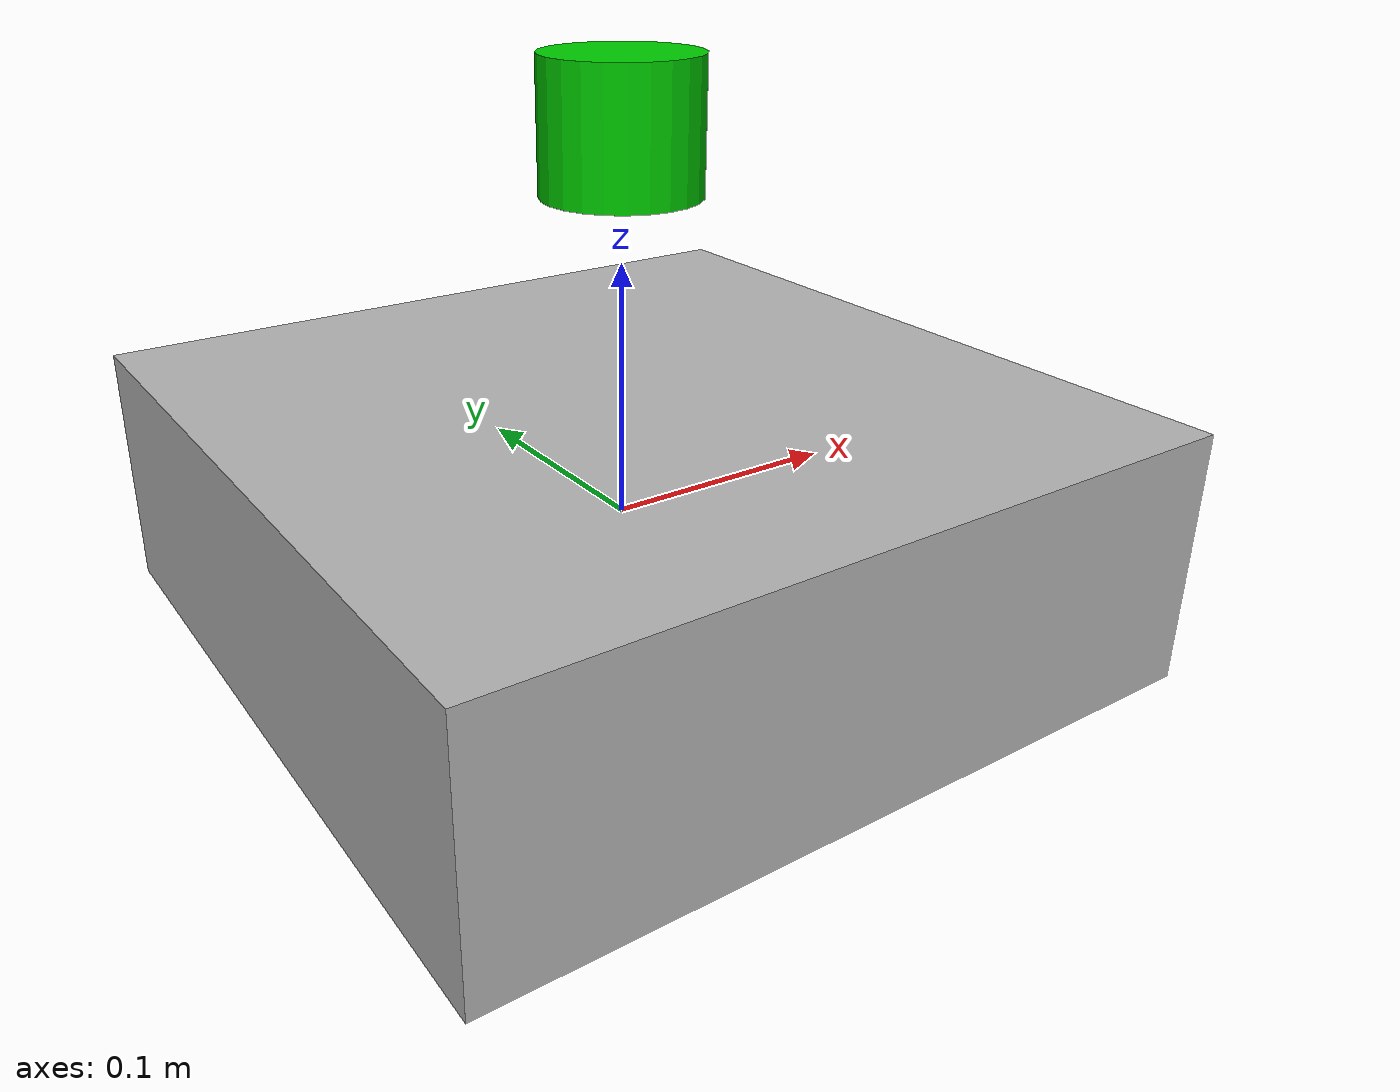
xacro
<?xml version="1.0"?>
<robot xmlns:xacro="http://ros.org/wiki/xacro" name="lidar_robot">
  <!-- Robot Base -->
  <link name="base_link">
    <visual>
      <geometry>
        <box size="0.3 0.3 0.1"/>
      </geometry>
      <material name="mat_1">
        <color rgba="0.7 0.7 0.7 1"/>
      </material>
    </visual>
    <collision>
      <geometry>
        <box size="0.3 0.3 0.1"/>
      </geometry>
    </collision>
    <inertial>
      <mass value="1.0"/>
      <inertia ixx="0.01" ixy="0.0" ixz="0.0" iyy="0.01" iyz="0.0" izz="0.01"/>
    </inertial>
  </link>

  <!-- LIDAR Link -->
  <link name="lidar_link">
    <visual>
      <geometry>
        <cylinder length="0.05" radius="0.03"/>
      </geometry>
      <material name="mat_2">
        <color rgba="0.0 0.8 0.0 1.0"/>
      </material>
    </visual>
    <collision>
      <geometry>
        <cylinder length="0.05" radius="0.03"/>
      </geometry>
    </collision>
    <origin xyz="0 0 0.15" rpy="0 0 0"/>
  </link>

  <!-- LIDAR Joint (fixed) -->
  <joint name="lidar_joint" type="fixed">
    <parent link="base_link"/>
    <child link="lidar_link"/>
    <origin xyz="0 0 0.15" rpy="0 0 0"/>
  </joint>

  <!-- Gazebo Simulation Tag for 2D LIDAR -->
  <gazebo reference="lidar_link">
    <sensor type="gpu_lidar" name="lidar">
      <pose>0 0 0 0 0 0</pose>
      <lidar>
        <scan>
          <horizontal>
            <samples>720</samples>
            <resolution>1</resolution>
            <min_angle>-1.5708</min_angle>    <!-- -90 deg -->
            <max_angle>1.5708</max_angle>     <!-- +90 deg -->
          </horizontal>
        </scan>
        <range>
          <min>0.12</min>
          <max>8.0</max>
          <resolution>0.01</resolution>
        </range>
      </lidar>
      <update_rate>20</update_rate>
      <visualize>true</visualize>
    </sensor>
  </gazebo>
</robot>
